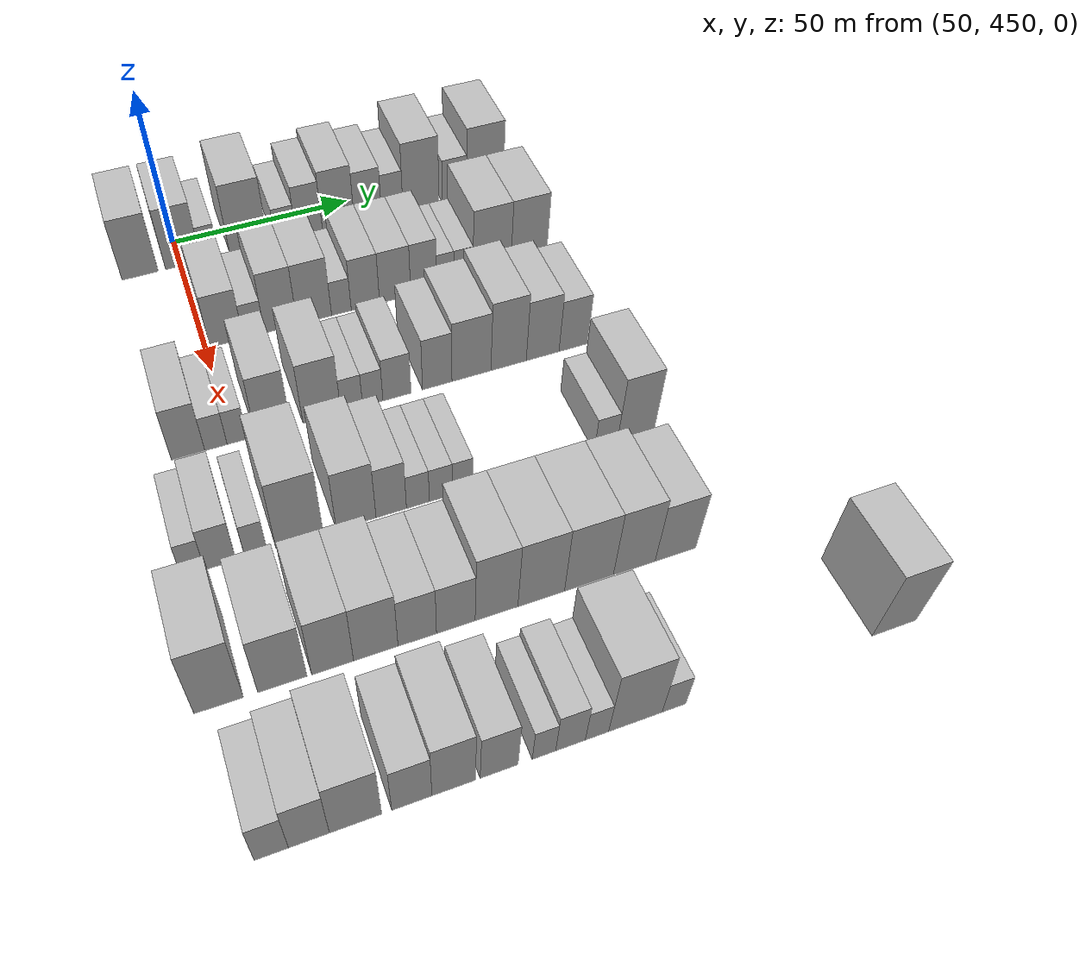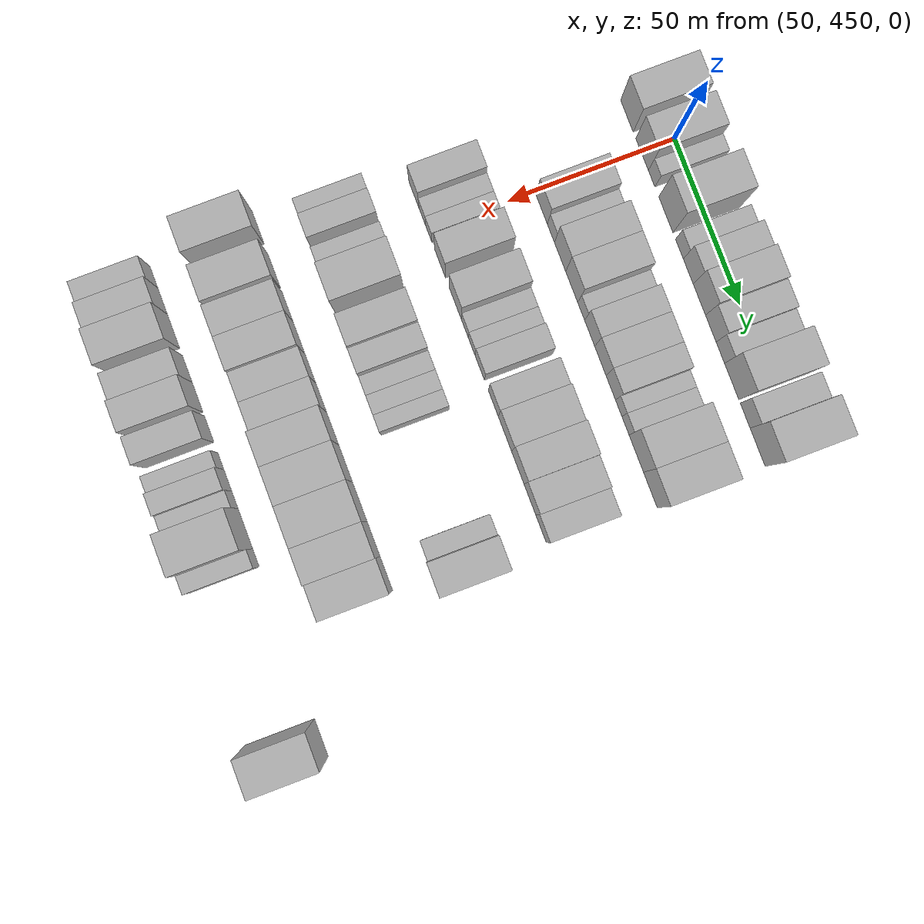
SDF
<sdf version="1.6">
 <world name="default">
  <model name="building_103">
   <static>1</static>
   <pose>50.0000 439.0548 0 0.000000 0.000000 0.000000</pose>
   <link name="link">
    <pose>0 0 10.50 0 0 0</pose>
    <collision name="collision"><geometry><box><size>20.0000 9.7772 21.0000</size></box></geometry></collision>
    <visual name="visual">
     <cast_shadows>0</cast_shadows>
     <geometry><box><size>20.0000 9.7772 21.0000</size></box></geometry>
     <material>
      <script>
       <uri>model://HANNAS_wall/materials/scripts</uri>
       <uri>model://HANNAS_wall/materials/textures</uri>
       <name>vrc/HANNAS_wall</name>
      </script>
     </material>
    </visual>
   </link>
  </model>
  <model name="building_104">
   <static>1</static>
   <pose>50.0000 450.8127 0 0.000000 0.000000 0.000000</pose>
   <link name="link">
    <pose>0 0 10.50 0 0 0</pose>
    <collision name="collision"><geometry><box><size>20.0000 9.7387 21.0000</size></box></geometry></collision>
    <visual name="visual">
     <cast_shadows>0</cast_shadows>
     <geometry><box><size>20.0000 9.7387 21.0000</size></box></geometry>
     <material>
      <script>
       <uri>model://HANNAS_wall/materials/scripts</uri>
       <uri>model://HANNAS_wall/materials/textures</uri>
       <name>vrc/HANNAS_wall</name>
      </script>
     </material>
    </visual>
   </link>
  </model>
  <model name="building_105">
   <static>1</static>
   <pose>50.0000 458.1939 0 0.000000 0.000000 0.000000</pose>
   <link name="link">
    <pose>0 0 6.00 0 0 0</pose>
    <collision name="collision"><geometry><box><size>20.0000 5.0235 12.0000</size></box></geometry></collision>
    <visual name="visual">
     <cast_shadows>0</cast_shadows>
     <geometry><box><size>20.0000 5.0235 12.0000</size></box></geometry>
     <material>
      <script>
       <uri>model://HANNAS_wall/materials/scripts</uri>
       <uri>model://HANNAS_wall/materials/textures</uri>
       <name>vrc/HANNAS_wall</name>
      </script>
     </material>
    </visual>
   </link>
  </model>
  <model name="building_106">
   <static>1</static>
   <pose>50.0000 469.1516 0 0.000000 0.000000 0.000000</pose>
   <link name="link">
    <pose>0 0 12.00 0 0 0</pose>
    <collision name="collision"><geometry><box><size>20.0000 10.8920 24.0000</size></box></geometry></collision>
    <visual name="visual">
     <cast_shadows>0</cast_shadows>
     <geometry><box><size>20.0000 10.8920 24.0000</size></box></geometry>
     <material>
      <script>
       <uri>model://HANNAS_wall/materials/scripts</uri>
       <uri>model://HANNAS_wall/materials/textures</uri>
       <name>vrc/HANNAS_wall</name>
      </script>
     </material>
    </visual>
   </link>
  </model>
  <model name="building_107">
   <static>1</static>
   <pose>50.0000 479.5795 0 0.000000 0.000000 0.000000</pose>
   <link name="link">
    <pose>0 0 6.00 0 0 0</pose>
    <collision name="collision"><geometry><box><size>20.0000 5.9638 12.0000</size></box></geometry></collision>
    <visual name="visual">
     <cast_shadows>0</cast_shadows>
     <geometry><box><size>20.0000 5.9638 12.0000</size></box></geometry>
     <material>
      <script>
       <uri>model://HANNAS_wall/materials/scripts</uri>
       <uri>model://HANNAS_wall/materials/textures</uri>
       <name>vrc/HANNAS_wall</name>
      </script>
     </material>
    </visual>
   </link>
  </model>
  <model name="building_108">
   <static>1</static>
   <pose>50.0000 486.3623 0 0.000000 0.000000 0.000000</pose>
   <link name="link">
    <pose>0 0 9.00 0 0 0</pose>
    <collision name="collision"><geometry><box><size>20.0000 7.6018 18.0000</size></box></geometry></collision>
    <visual name="visual">
     <cast_shadows>0</cast_shadows>
     <geometry><box><size>20.0000 7.6018 18.0000</size></box></geometry>
     <material>
      <script>
       <uri>model://HANNAS_wall/materials/scripts</uri>
       <uri>model://HANNAS_wall/materials/textures</uri>
       <name>vrc/HANNAS_wall</name>
      </script>
     </material>
    </visual>
   </link>
  </model>
  <model name="building_109">
   <static>1</static>
   <pose>50.0000 494.8280 0 0.000000 0.000000 0.000000</pose>
   <link name="link">
    <pose>0 0 10.50 0 0 0</pose>
    <collision name="collision"><geometry><box><size>20.0000 9.3296 21.0000</size></box></geometry></collision>
    <visual name="visual">
     <cast_shadows>0</cast_shadows>
     <geometry><box><size>20.0000 9.3296 21.0000</size></box></geometry>
     <material>
      <script>
       <uri>model://HANNAS_wall/materials/scripts</uri>
       <uri>model://HANNAS_wall/materials/textures</uri>
       <name>vrc/HANNAS_wall</name>
      </script>
     </material>
    </visual>
   </link>
  </model>
  <model name="building_110">
   <static>1</static>
   <pose>50.0000 503.5061 0 0.000000 0.000000 0.000000</pose>
   <link name="link">
    <pose>0 0 9.00 0 0 0</pose>
    <collision name="collision"><geometry><box><size>20.0000 8.0268 18.0000</size></box></geometry></collision>
    <visual name="visual">
     <cast_shadows>0</cast_shadows>
     <geometry><box><size>20.0000 8.0268 18.0000</size></box></geometry>
     <material>
      <script>
       <uri>model://HANNAS_wall/materials/scripts</uri>
       <uri>model://HANNAS_wall/materials/textures</uri>
       <name>vrc/HANNAS_wall</name>
      </script>
     </material>
    </visual>
   </link>
  </model>
  <model name="building_111">
   <static>1</static>
   <pose>50.0000 510.7034 0 0.000000 0.000000 0.000000</pose>
   <link name="link">
    <pose>0 0 7.50 0 0 0</pose>
    <collision name="collision"><geometry><box><size>20.0000 6.3677 15.0000</size></box></geometry></collision>
    <visual name="visual">
     <cast_shadows>0</cast_shadows>
     <geometry><box><size>20.0000 6.3677 15.0000</size></box></geometry>
     <material>
      <script>
       <uri>model://HANNAS_wall/materials/scripts</uri>
       <uri>model://HANNAS_wall/materials/textures</uri>
       <name>vrc/HANNAS_wall</name>
      </script>
     </material>
    </visual>
   </link>
  </model>
  <model name="building_112">
   <static>1</static>
   <pose>50.0000 519.2962 0 0.000000 0.000000 0.000000</pose>
   <link name="link">
    <pose>0 0 12.00 0 0 0</pose>
    <collision name="collision"><geometry><box><size>20.0000 10.8180 24.0000</size></box></geometry></collision>
    <visual name="visual">
     <cast_shadows>0</cast_shadows>
     <geometry><box><size>20.0000 10.8180 24.0000</size></box></geometry>
     <material>
      <script>
       <uri>model://HANNAS_wall/materials/scripts</uri>
       <uri>model://HANNAS_wall/materials/textures</uri>
       <name>vrc/HANNAS_wall</name>
      </script>
     </material>
    </visual>
   </link>
  </model>
  <model name="building_113">
   <static>1</static>
   <pose>50.0000 529.4061 0 0.000000 0.000000 0.000000</pose>
   <link name="link">
    <pose>0 0 7.50 0 0 0</pose>
    <collision name="collision"><geometry><box><size>20.0000 7.4017 15.0000</size></box></geometry></collision>
    <visual name="visual">
     <cast_shadows>0</cast_shadows>
     <geometry><box><size>20.0000 7.4017 15.0000</size></box></geometry>
     <material>
      <script>
       <uri>model://HANNAS_wall/materials/scripts</uri>
       <uri>model://HANNAS_wall/materials/textures</uri>
       <name>vrc/HANNAS_wall</name>
      </script>
     </material>
    </visual>
   </link>
  </model>
  <model name="building_114">
   <static>1</static>
   <pose>50.0000 538.7669 0 0.000000 0.000000 0.000000</pose>
   <link name="link">
    <pose>0 0 12.00 0 0 0</pose>
    <collision name="collision"><geometry><box><size>20.0000 11.3199 24.0000</size></box></geometry></collision>
    <visual name="visual">
     <cast_shadows>0</cast_shadows>
     <geometry><box><size>20.0000 11.3199 24.0000</size></box></geometry>
     <material>
      <script>
       <uri>model://HANNAS_wall/materials/scripts</uri>
       <uri>model://HANNAS_wall/materials/textures</uri>
       <name>vrc/HANNAS_wall</name>
      </script>
     </material>
    </visual>
   </link>
  </model>
  <model name="building_224">
   <static>1</static>
   <pose>82.0000 455.5686 0 0.000000 0.000000 0.000000</pose>
   <link name="link">
    <pose>0 0 9.00 0 0 0</pose>
    <collision name="collision"><geometry><box><size>20.0000 8.8140 18.0000</size></box></geometry></collision>
    <visual name="visual">
     <cast_shadows>0</cast_shadows>
     <geometry><box><size>20.0000 8.8140 18.0000</size></box></geometry>
     <material>
      <script>
       <uri>model://HANNAS_wall/materials/scripts</uri>
       <uri>model://HANNAS_wall/materials/textures</uri>
       <name>vrc/HANNAS_wall</name>
      </script>
     </material>
    </visual>
   </link>
  </model>
  <model name="building_225">
   <static>1</static>
   <pose>82.0000 462.7921 0 0.000000 0.000000 0.000000</pose>
   <link name="link">
    <pose>0 0 6.00 0 0 0</pose>
    <collision name="collision"><geometry><box><size>20.0000 5.6330 12.0000</size></box></geometry></collision>
    <visual name="visual">
     <cast_shadows>0</cast_shadows>
     <geometry><box><size>20.0000 5.6330 12.0000</size></box></geometry>
     <material>
      <script>
       <uri>model://HANNAS_wall/materials/scripts</uri>
       <uri>model://HANNAS_wall/materials/textures</uri>
       <name>vrc/HANNAS_wall</name>
      </script>
     </material>
    </visual>
   </link>
  </model>
  <model name="building_226">
   <static>1</static>
   <pose>82.0000 469.9623 0 0.000000 0.000000 0.000000</pose>
   <link name="link">
    <pose>0 0 10.50 0 0 0</pose>
    <collision name="collision"><geometry><box><size>20.0000 8.7074 21.0000</size></box></geometry></collision>
    <visual name="visual">
     <cast_shadows>0</cast_shadows>
     <geometry><box><size>20.0000 8.7074 21.0000</size></box></geometry>
     <material>
      <script>
       <uri>model://HANNAS_wall/materials/scripts</uri>
       <uri>model://HANNAS_wall/materials/textures</uri>
       <name>vrc/HANNAS_wall</name>
      </script>
     </material>
    </visual>
   </link>
  </model>
  <model name="building_227">
   <static>1</static>
   <pose>82.0000 478.9648 0 0.000000 0.000000 0.000000</pose>
   <link name="link">
    <pose>0 0 10.50 0 0 0</pose>
    <collision name="collision"><geometry><box><size>20.0000 9.2976 21.0000</size></box></geometry></collision>
    <visual name="visual">
     <cast_shadows>0</cast_shadows>
     <geometry><box><size>20.0000 9.2976 21.0000</size></box></geometry>
     <material>
      <script>
       <uri>model://HANNAS_wall/materials/scripts</uri>
       <uri>model://HANNAS_wall/materials/textures</uri>
       <name>vrc/HANNAS_wall</name>
      </script>
     </material>
    </visual>
   </link>
  </model>
  <model name="building_228">
   <static>1</static>
   <pose>82.0000 486.2976 0 0.000000 0.000000 0.000000</pose>
   <link name="link">
    <pose>0 0 6.00 0 0 0</pose>
    <collision name="collision"><geometry><box><size>20.0000 5.3678 12.0000</size></box></geometry></collision>
    <visual name="visual">
     <cast_shadows>0</cast_shadows>
     <geometry><box><size>20.0000 5.3678 12.0000</size></box></geometry>
     <material>
      <script>
       <uri>model://HANNAS_wall/materials/scripts</uri>
       <uri>model://HANNAS_wall/materials/textures</uri>
       <name>vrc/HANNAS_wall</name>
      </script>
     </material>
    </visual>
   </link>
  </model>
  <model name="building_229">
   <static>1</static>
   <pose>82.0000 492.8837 0 0.000000 0.000000 0.000000</pose>
   <link name="link">
    <pose>0 0 9.00 0 0 0</pose>
    <collision name="collision"><geometry><box><size>20.0000 7.8043 18.0000</size></box></geometry></collision>
    <visual name="visual">
     <cast_shadows>0</cast_shadows>
     <geometry><box><size>20.0000 7.8043 18.0000</size></box></geometry>
     <material>
      <script>
       <uri>model://HANNAS_wall/materials/scripts</uri>
       <uri>model://HANNAS_wall/materials/textures</uri>
       <name>vrc/HANNAS_wall</name>
      </script>
     </material>
    </visual>
   </link>
  </model>
  <model name="building_230">
   <static>1</static>
   <pose>82.0000 501.1316 0 0.000000 0.000000 0.000000</pose>
   <link name="link">
    <pose>0 0 9.00 0 0 0</pose>
    <collision name="collision"><geometry><box><size>20.0000 8.6916 18.0000</size></box></geometry></collision>
    <visual name="visual">
     <cast_shadows>0</cast_shadows>
     <geometry><box><size>20.0000 8.6916 18.0000</size></box></geometry>
     <material>
      <script>
       <uri>model://HANNAS_wall/materials/scripts</uri>
       <uri>model://HANNAS_wall/materials/textures</uri>
       <name>vrc/HANNAS_wall</name>
      </script>
     </material>
    </visual>
   </link>
  </model>
  <model name="building_231">
   <static>1</static>
   <pose>82.0000 509.1300 0 0.000000 0.000000 0.000000</pose>
   <link name="link">
    <pose>0 0 9.00 0 0 0</pose>
    <collision name="collision"><geometry><box><size>20.0000 7.3052 18.0000</size></box></geometry></collision>
    <visual name="visual">
     <cast_shadows>0</cast_shadows>
     <geometry><box><size>20.0000 7.3052 18.0000</size></box></geometry>
     <material>
      <script>
       <uri>model://HANNAS_wall/materials/scripts</uri>
       <uri>model://HANNAS_wall/materials/textures</uri>
       <name>vrc/HANNAS_wall</name>
      </script>
     </material>
    </visual>
   </link>
  </model>
  <model name="building_232">
   <static>1</static>
   <pose>82.0000 515.2304 0 0.000000 0.000000 0.000000</pose>
   <link name="link">
    <pose>0 0 6.00 0 0 0</pose>
    <collision name="collision"><geometry><box><size>20.0000 4.8956 12.0000</size></box></geometry></collision>
    <visual name="visual">
     <cast_shadows>0</cast_shadows>
     <geometry><box><size>20.0000 4.8956 12.0000</size></box></geometry>
     <material>
      <script>
       <uri>model://HANNAS_wall/materials/scripts</uri>
       <uri>model://HANNAS_wall/materials/textures</uri>
       <name>vrc/HANNAS_wall</name>
      </script>
     </material>
    </visual>
   </link>
  </model>
  <model name="building_233">
   <static>1</static>
   <pose>82.0000 520.4103 0 0.000000 0.000000 0.000000</pose>
   <link name="link">
    <pose>0 0 6.00 0 0 0</pose>
    <collision name="collision"><geometry><box><size>20.0000 5.4642 12.0000</size></box></geometry></collision>
    <visual name="visual">
     <cast_shadows>0</cast_shadows>
     <geometry><box><size>20.0000 5.4642 12.0000</size></box></geometry>
     <material>
      <script>
       <uri>model://HANNAS_wall/materials/scripts</uri>
       <uri>model://HANNAS_wall/materials/textures</uri>
       <name>vrc/HANNAS_wall</name>
      </script>
     </material>
    </visual>
   </link>
  </model>
  <model name="building_234">
   <static>1</static>
   <pose>82.0000 528.6153 0 0.000000 0.000000 0.000000</pose>
   <link name="link">
    <pose>0 0 12.00 0 0 0</pose>
    <collision name="collision"><geometry><box><size>20.0000 10.9459 24.0000</size></box></geometry></collision>
    <visual name="visual">
     <cast_shadows>0</cast_shadows>
     <geometry><box><size>20.0000 10.9459 24.0000</size></box></geometry>
     <material>
      <script>
       <uri>model://HANNAS_wall/materials/scripts</uri>
       <uri>model://HANNAS_wall/materials/textures</uri>
       <name>vrc/HANNAS_wall</name>
      </script>
     </material>
    </visual>
   </link>
  </model>
  <model name="building_235">
   <static>1</static>
   <pose>82.0000 539.3096 0 0.000000 0.000000 0.000000</pose>
   <link name="link">
    <pose>0 0 12.00 0 0 0</pose>
    <collision name="collision"><geometry><box><size>20.0000 10.4426 24.0000</size></box></geometry></collision>
    <visual name="visual">
     <cast_shadows>0</cast_shadows>
     <geometry><box><size>20.0000 10.4426 24.0000</size></box></geometry>
     <material>
      <script>
       <uri>model://HANNAS_wall/materials/scripts</uri>
       <uri>model://HANNAS_wall/materials/textures</uri>
       <name>vrc/HANNAS_wall</name>
      </script>
     </material>
    </visual>
   </link>
  </model>
  <model name="building_346">
   <static>1</static>
   <pose>114.0000 439.1416 0 0.000000 0.000000 0.000000</pose>
   <link name="link">
    <pose>0 0 9.00 0 0 0</pose>
    <collision name="collision"><geometry><box><size>20.0000 7.9990 18.0000</size></box></geometry></collision>
    <visual name="visual">
     <cast_shadows>0</cast_shadows>
     <geometry><box><size>20.0000 7.9990 18.0000</size></box></geometry>
     <material>
      <script>
       <uri>model://HANNAS_wall/materials/scripts</uri>
       <uri>model://HANNAS_wall/materials/textures</uri>
       <name>vrc/HANNAS_wall</name>
      </script>
     </material>
    </visual>
   </link>
  </model>
  <model name="building_347">
   <static>1</static>
   <pose>114.0000 445.8408 0 0.000000 0.000000 0.000000</pose>
   <link name="link">
    <pose>0 0 6.00 0 0 0</pose>
    <collision name="collision"><geometry><box><size>20.0000 5.3993 12.0000</size></box></geometry></collision>
    <visual name="visual">
     <cast_shadows>0</cast_shadows>
     <geometry><box><size>20.0000 5.3993 12.0000</size></box></geometry>
     <material>
      <script>
       <uri>model://HANNAS_wall/materials/scripts</uri>
       <uri>model://HANNAS_wall/materials/textures</uri>
       <name>vrc/HANNAS_wall</name>
      </script>
     </material>
    </visual>
   </link>
  </model>
  <model name="building_348">
   <static>1</static>
   <pose>114.0000 451.0106 0 0.000000 0.000000 0.000000</pose>
   <link name="link">
    <pose>0 0 6.00 0 0 0</pose>
    <collision name="collision"><geometry><box><size>20.0000 4.9402 12.0000</size></box></geometry></collision>
    <visual name="visual">
     <cast_shadows>0</cast_shadows>
     <geometry><box><size>20.0000 4.9402 12.0000</size></box></geometry>
     <material>
      <script>
       <uri>model://HANNAS_wall/materials/scripts</uri>
       <uri>model://HANNAS_wall/materials/textures</uri>
       <name>vrc/HANNAS_wall</name>
      </script>
     </material>
    </visual>
   </link>
  </model>
  <model name="building_349">
   <static>1</static>
   <pose>114.0000 459.8378 0 0.000000 0.000000 0.000000</pose>
   <link name="link">
    <pose>0 0 10.50 0 0 0</pose>
    <collision name="collision"><geometry><box><size>20.0000 8.7142 21.0000</size></box></geometry></collision>
    <visual name="visual">
     <cast_shadows>0</cast_shadows>
     <geometry><box><size>20.0000 8.7142 21.0000</size></box></geometry>
     <material>
      <script>
       <uri>model://HANNAS_wall/materials/scripts</uri>
       <uri>model://HANNAS_wall/materials/textures</uri>
       <name>vrc/HANNAS_wall</name>
      </script>
     </material>
    </visual>
   </link>
  </model>
  <model name="building_350">
   <static>1</static>
   <pose>114.0000 471.9777 0 0.000000 0.000000 0.000000</pose>
   <link name="link">
    <pose>0 0 10.50 0 0 0</pose>
    <collision name="collision"><geometry><box><size>20.0000 9.5657 21.0000</size></box></geometry></collision>
    <visual name="visual">
     <cast_shadows>0</cast_shadows>
     <geometry><box><size>20.0000 9.5657 21.0000</size></box></geometry>
     <material>
      <script>
       <uri>model://HANNAS_wall/materials/scripts</uri>
       <uri>model://HANNAS_wall/materials/textures</uri>
       <name>vrc/HANNAS_wall</name>
      </script>
     </material>
    </visual>
   </link>
  </model>
  <model name="building_351">
   <static>1</static>
   <pose>114.0000 479.5344 0 0.000000 0.000000 0.000000</pose>
   <link name="link">
    <pose>0 0 6.00 0 0 0</pose>
    <collision name="collision"><geometry><box><size>20.0000 5.5477 12.0000</size></box></geometry></collision>
    <visual name="visual">
     <cast_shadows>0</cast_shadows>
     <geometry><box><size>20.0000 5.5477 12.0000</size></box></geometry>
     <material>
      <script>
       <uri>model://HANNAS_wall/materials/scripts</uri>
       <uri>model://HANNAS_wall/materials/textures</uri>
       <name>vrc/HANNAS_wall</name>
      </script>
     </material>
    </visual>
   </link>
  </model>
  <model name="building_352">
   <static>1</static>
   <pose>114.0000 484.9096 0 0.000000 0.000000 0.000000</pose>
   <link name="link">
    <pose>0 0 6.00 0 0 0</pose>
    <collision name="collision"><geometry><box><size>20.0000 5.2028 12.0000</size></box></geometry></collision>
    <visual name="visual">
     <cast_shadows>0</cast_shadows>
     <geometry><box><size>20.0000 5.2028 12.0000</size></box></geometry>
     <material>
      <script>
       <uri>model://HANNAS_wall/materials/scripts</uri>
       <uri>model://HANNAS_wall/materials/textures</uri>
       <name>vrc/HANNAS_wall</name>
      </script>
     </material>
    </visual>
   </link>
  </model>
  <model name="building_353">
   <static>1</static>
   <pose>114.0000 491.1582 0 0.000000 0.000000 0.000000</pose>
   <link name="link">
    <pose>0 0 7.50 0 0 0</pose>
    <collision name="collision"><geometry><box><size>20.0000 7.2944 15.0000</size></box></geometry></collision>
    <visual name="visual">
     <cast_shadows>0</cast_shadows>
     <geometry><box><size>20.0000 7.2944 15.0000</size></box></geometry>
     <material>
      <script>
       <uri>model://HANNAS_wall/materials/scripts</uri>
       <uri>model://HANNAS_wall/materials/textures</uri>
       <name>vrc/HANNAS_wall</name>
      </script>
     </material>
    </visual>
   </link>
  </model>
  <model name="building_354">
   <static>1</static>
   <pose>114.0000 501.6869 0 0.000000 0.000000 0.000000</pose>
   <link name="link">
    <pose>0 0 9.00 0 0 0</pose>
    <collision name="collision"><geometry><box><size>20.0000 7.7631 18.0000</size></box></geometry></collision>
    <visual name="visual">
     <cast_shadows>0</cast_shadows>
     <geometry><box><size>20.0000 7.7631 18.0000</size></box></geometry>
     <material>
      <script>
       <uri>model://HANNAS_wall/materials/scripts</uri>
       <uri>model://HANNAS_wall/materials/textures</uri>
       <name>vrc/HANNAS_wall</name>
      </script>
     </material>
    </visual>
   </link>
  </model>
  <model name="building_355">
   <static>1</static>
   <pose>114.0000 510.7737 0 0.000000 0.000000 0.000000</pose>
   <link name="link">
    <pose>0 0 10.50 0 0 0</pose>
    <collision name="collision"><geometry><box><size>20.0000 10.4106 21.0000</size></box></geometry></collision>
    <visual name="visual">
     <cast_shadows>0</cast_shadows>
     <geometry><box><size>20.0000 10.4106 21.0000</size></box></geometry>
     <material>
      <script>
       <uri>model://HANNAS_wall/materials/scripts</uri>
       <uri>model://HANNAS_wall/materials/textures</uri>
       <name>vrc/HANNAS_wall</name>
      </script>
     </material>
    </visual>
   </link>
  </model>
  <model name="building_356">
   <static>1</static>
   <pose>114.0000 520.7861 0 0.000000 0.000000 0.000000</pose>
   <link name="link">
    <pose>0 0 12.00 0 0 0</pose>
    <collision name="collision"><geometry><box><size>20.0000 9.6142 24.0000</size></box></geometry></collision>
    <visual name="visual">
     <cast_shadows>0</cast_shadows>
     <geometry><box><size>20.0000 9.6142 24.0000</size></box></geometry>
     <material>
      <script>
       <uri>model://HANNAS_wall/materials/scripts</uri>
       <uri>model://HANNAS_wall/materials/textures</uri>
       <name>vrc/HANNAS_wall</name>
      </script>
     </material>
    </visual>
   </link>
  </model>
  <model name="building_357">
   <static>1</static>
   <pose>114.0000 530.0962 0 0.000000 0.000000 0.000000</pose>
   <link name="link">
    <pose>0 0 10.50 0 0 0</pose>
    <collision name="collision"><geometry><box><size>20.0000 9.0059 21.0000</size></box></geometry></collision>
    <visual name="visual">
     <cast_shadows>0</cast_shadows>
     <geometry><box><size>20.0000 9.0059 21.0000</size></box></geometry>
     <material>
      <script>
       <uri>model://HANNAS_wall/materials/scripts</uri>
       <uri>model://HANNAS_wall/materials/textures</uri>
       <name>vrc/HANNAS_wall</name>
      </script>
     </material>
    </visual>
   </link>
  </model>
  <model name="building_358">
   <static>1</static>
   <pose>114.0000 538.5714 0 0.000000 0.000000 0.000000</pose>
   <link name="link">
    <pose>0 0 9.00 0 0 0</pose>
    <collision name="collision"><geometry><box><size>20.0000 7.9446 18.0000</size></box></geometry></collision>
    <visual name="visual">
     <cast_shadows>0</cast_shadows>
     <geometry><box><size>20.0000 7.9446 18.0000</size></box></geometry>
     <material>
      <script>
       <uri>model://HANNAS_wall/materials/scripts</uri>
       <uri>model://HANNAS_wall/materials/textures</uri>
       <name>vrc/HANNAS_wall</name>
      </script>
     </material>
    </visual>
   </link>
  </model>
  <model name="building_466">
   <static>1</static>
   <pose>146.0000 433.7338 0 0.000000 0.000000 0.000000</pose>
   <link name="link">
    <pose>0 0 6.00 0 0 0</pose>
    <collision name="collision"><geometry><box><size>20.0000 5.1615 12.0000</size></box></geometry></collision>
    <visual name="visual">
     <cast_shadows>0</cast_shadows>
     <geometry><box><size>20.0000 5.1615 12.0000</size></box></geometry>
     <material>
      <script>
       <uri>model://HANNAS_wall/materials/scripts</uri>
       <uri>model://HANNAS_wall/materials/textures</uri>
       <name>vrc/HANNAS_wall</name>
      </script>
     </material>
    </visual>
   </link>
  </model>
  <model name="building_467">
   <static>1</static>
   <pose>146.0000 439.8168 0 0.000000 0.000000 0.000000</pose>
   <link name="link">
    <pose>0 0 7.50 0 0 0</pose>
    <collision name="collision"><geometry><box><size>20.0000 7.0044 15.0000</size></box></geometry></collision>
    <visual name="visual">
     <cast_shadows>0</cast_shadows>
     <geometry><box><size>20.0000 7.0044 15.0000</size></box></geometry>
     <material>
      <script>
       <uri>model://HANNAS_wall/materials/scripts</uri>
       <uri>model://HANNAS_wall/materials/textures</uri>
       <name>vrc/HANNAS_wall</name>
      </script>
     </material>
    </visual>
   </link>
  </model>
  <model name="building_468">
   <static>1</static>
   <pose>146.0000 447.8389 0 0.000000 0.000000 0.000000</pose>
   <link name="link">
    <pose>0 0 6.00 0 0 0</pose>
    <collision name="collision"><geometry><box><size>20.0000 5.0398 12.0000</size></box></geometry></collision>
    <visual name="visual">
     <cast_shadows>0</cast_shadows>
     <geometry><box><size>20.0000 5.0398 12.0000</size></box></geometry>
     <material>
      <script>
       <uri>model://HANNAS_wall/materials/scripts</uri>
       <uri>model://HANNAS_wall/materials/textures</uri>
       <name>vrc/HANNAS_wall</name>
      </script>
     </material>
    </visual>
   </link>
  </model>
  <model name="building_469">
   <static>1</static>
   <pose>146.0000 457.8391 0 0.000000 0.000000 0.000000</pose>
   <link name="link">
    <pose>0 0 12.00 0 0 0</pose>
    <collision name="collision"><geometry><box><size>20.0000 10.9607 24.0000</size></box></geometry></collision>
    <visual name="visual">
     <cast_shadows>0</cast_shadows>
     <geometry><box><size>20.0000 10.9607 24.0000</size></box></geometry>
     <material>
      <script>
       <uri>model://HANNAS_wall/materials/scripts</uri>
       <uri>model://HANNAS_wall/materials/textures</uri>
       <name>vrc/HANNAS_wall</name>
      </script>
     </material>
    </visual>
   </link>
  </model>
  <model name="building_470">
   <static>1</static>
   <pose>146.0000 471.0023 0 0.000000 0.000000 0.000000</pose>
   <link name="link">
    <pose>0 0 10.50 0 0 0</pose>
    <collision name="collision"><geometry><box><size>20.0000 9.3659 21.0000</size></box></geometry></collision>
    <visual name="visual">
     <cast_shadows>0</cast_shadows>
     <geometry><box><size>20.0000 9.3659 21.0000</size></box></geometry>
     <material>
      <script>
       <uri>model://HANNAS_wall/materials/scripts</uri>
       <uri>model://HANNAS_wall/materials/textures</uri>
       <name>vrc/HANNAS_wall</name>
      </script>
     </material>
    </visual>
   </link>
  </model>
  <model name="building_471">
   <static>1</static>
   <pose>146.0000 479.3212 0 0.000000 0.000000 0.000000</pose>
   <link name="link">
    <pose>0 0 9.00 0 0 0</pose>
    <collision name="collision"><geometry><box><size>20.0000 7.2719 18.0000</size></box></geometry></collision>
    <visual name="visual">
     <cast_shadows>0</cast_shadows>
     <geometry><box><size>20.0000 7.2719 18.0000</size></box></geometry>
     <material>
      <script>
       <uri>model://HANNAS_wall/materials/scripts</uri>
       <uri>model://HANNAS_wall/materials/textures</uri>
       <name>vrc/HANNAS_wall</name>
      </script>
     </material>
    </visual>
   </link>
  </model>
  <model name="building_472">
   <static>1</static>
   <pose>146.0000 485.7202 0 0.000000 0.000000 0.000000</pose>
   <link name="link">
    <pose>0 0 6.00 0 0 0</pose>
    <collision name="collision"><geometry><box><size>20.0000 5.5259 12.0000</size></box></geometry></collision>
    <visual name="visual">
     <cast_shadows>0</cast_shadows>
     <geometry><box><size>20.0000 5.5259 12.0000</size></box></geometry>
     <material>
      <script>
       <uri>model://HANNAS_wall/materials/scripts</uri>
       <uri>model://HANNAS_wall/materials/textures</uri>
       <name>vrc/HANNAS_wall</name>
      </script>
     </material>
    </visual>
   </link>
  </model>
  <model name="building_473">
   <static>1</static>
   <pose>146.0000 491.2937 0 0.000000 0.000000 0.000000</pose>
   <link name="link">
    <pose>0 0 6.00 0 0 0</pose>
    <collision name="collision"><geometry><box><size>20.0000 5.6211 12.0000</size></box></geometry></collision>
    <visual name="visual">
     <cast_shadows>0</cast_shadows>
     <geometry><box><size>20.0000 5.6211 12.0000</size></box></geometry>
     <material>
      <script>
       <uri>model://HANNAS_wall/materials/scripts</uri>
       <uri>model://HANNAS_wall/materials/textures</uri>
       <name>vrc/HANNAS_wall</name>
      </script>
     </material>
    </visual>
   </link>
  </model>
  <model name="building_474">
   <static>1</static>
   <pose>146.0000 496.5816 0 0.000000 0.000000 0.000000</pose>
   <link name="link">
    <pose>0 0 6.00 0 0 0</pose>
    <collision name="collision"><geometry><box><size>20.0000 4.9548 12.0000</size></box></geometry></collision>
    <visual name="visual">
     <cast_shadows>0</cast_shadows>
     <geometry><box><size>20.0000 4.9548 12.0000</size></box></geometry>
     <material>
      <script>
       <uri>model://HANNAS_wall/materials/scripts</uri>
       <uri>model://HANNAS_wall/materials/textures</uri>
       <name>vrc/HANNAS_wall</name>
      </script>
     </material>
    </visual>
   </link>
  </model>
  <model name="building_475">
   <static>1</static>
   <pose>146.0000 532.8542 0 0.000000 0.000000 0.000000</pose>
   <link name="link">
    <pose>0 0 6.00 0 0 0</pose>
    <collision name="collision"><geometry><box><size>20.0000 5.8635 12.0000</size></box></geometry></collision>
    <visual name="visual">
     <cast_shadows>0</cast_shadows>
     <geometry><box><size>20.0000 5.8635 12.0000</size></box></geometry>
     <material>
      <script>
       <uri>model://HANNAS_wall/materials/scripts</uri>
       <uri>model://HANNAS_wall/materials/textures</uri>
       <name>vrc/HANNAS_wall</name>
      </script>
     </material>
    </visual>
   </link>
  </model>
  <model name="building_476">
   <static>1</static>
   <pose>146.0000 540.6303 0 0.000000 0.000000 0.000000</pose>
   <link name="link">
    <pose>0 0 12.00 0 0 0</pose>
    <collision name="collision"><geometry><box><size>20.0000 9.6888 24.0000</size></box></geometry></collision>
    <visual name="visual">
     <cast_shadows>0</cast_shadows>
     <geometry><box><size>20.0000 9.6888 24.0000</size></box></geometry>
     <material>
      <script>
       <uri>model://HANNAS_wall/materials/scripts</uri>
       <uri>model://HANNAS_wall/materials/textures</uri>
       <name>vrc/HANNAS_wall</name>
      </script>
     </material>
    </visual>
   </link>
  </model>
  <model name="building_588">
   <static>1</static>
   <pose>178.0000 432.3826 0 0.000000 0.000000 0.000000</pose>
   <link name="link">
    <pose>0 0 12.00 0 0 0</pose>
    <collision name="collision"><geometry><box><size>20.0000 10.1271 24.0000</size></box></geometry></collision>
    <visual name="visual">
     <cast_shadows>0</cast_shadows>
     <geometry><box><size>20.0000 10.1271 24.0000</size></box></geometry>
     <material>
      <script>
       <uri>model://HANNAS_wall/materials/scripts</uri>
       <uri>model://HANNAS_wall/materials/textures</uri>
       <name>vrc/HANNAS_wall</name>
      </script>
     </material>
    </visual>
   </link>
  </model>
  <model name="building_589">
   <static>1</static>
   <pose>178.0000 445.6225 0 0.000000 0.000000 0.000000</pose>
   <link name="link">
    <pose>0 0 10.50 0 0 0</pose>
    <collision name="collision"><geometry><box><size>20.0000 10.3528 21.0000</size></box></geometry></collision>
    <visual name="visual">
     <cast_shadows>0</cast_shadows>
     <geometry><box><size>20.0000 10.3528 21.0000</size></box></geometry>
     <material>
      <script>
       <uri>model://HANNAS_wall/materials/scripts</uri>
       <uri>model://HANNAS_wall/materials/textures</uri>
       <name>vrc/HANNAS_wall</name>
      </script>
     </material>
    </visual>
   </link>
  </model>
  <model name="building_590">
   <static>1</static>
   <pose>178.0000 456.2854 0 0.000000 0.000000 0.000000</pose>
   <link name="link">
    <pose>0 0 10.50 0 0 0</pose>
    <collision name="collision"><geometry><box><size>20.0000 8.9730 21.0000</size></box></geometry></collision>
    <visual name="visual">
     <cast_shadows>0</cast_shadows>
     <geometry><box><size>20.0000 8.9730 21.0000</size></box></geometry>
     <material>
      <script>
       <uri>model://HANNAS_wall/materials/scripts</uri>
       <uri>model://HANNAS_wall/materials/textures</uri>
       <name>vrc/HANNAS_wall</name>
      </script>
     </material>
    </visual>
   </link>
  </model>
  <model name="building_591">
   <static>1</static>
   <pose>178.0000 465.6184 0 0.000000 0.000000 0.000000</pose>
   <link name="link">
    <pose>0 0 10.50 0 0 0</pose>
    <collision name="collision"><geometry><box><size>20.0000 9.6931 21.0000</size></box></geometry></collision>
    <visual name="visual">
     <cast_shadows>0</cast_shadows>
     <geometry><box><size>20.0000 9.6931 21.0000</size></box></geometry>
     <material>
      <script>
       <uri>model://HANNAS_wall/materials/scripts</uri>
       <uri>model://HANNAS_wall/materials/textures</uri>
       <name>vrc/HANNAS_wall</name>
      </script>
     </material>
    </visual>
   </link>
  </model>
  <model name="building_592">
   <static>1</static>
   <pose>178.0000 474.7180 0 0.000000 0.000000 0.000000</pose>
   <link name="link">
    <pose>0 0 9.00 0 0 0</pose>
    <collision name="collision"><geometry><box><size>20.0000 8.5061 18.0000</size></box></geometry></collision>
    <visual name="visual">
     <cast_shadows>0</cast_shadows>
     <geometry><box><size>20.0000 8.5061 18.0000</size></box></geometry>
     <material>
      <script>
       <uri>model://HANNAS_wall/materials/scripts</uri>
       <uri>model://HANNAS_wall/materials/textures</uri>
       <name>vrc/HANNAS_wall</name>
      </script>
     </material>
    </visual>
   </link>
  </model>
  <model name="building_593">
   <static>1</static>
   <pose>178.0000 483.3217 0 0.000000 0.000000 0.000000</pose>
   <link name="link">
    <pose>0 0 9.00 0 0 0</pose>
    <collision name="collision"><geometry><box><size>20.0000 8.7013 18.0000</size></box></geometry></collision>
    <visual name="visual">
     <cast_shadows>0</cast_shadows>
     <geometry><box><size>20.0000 8.7013 18.0000</size></box></geometry>
     <material>
      <script>
       <uri>model://HANNAS_wall/materials/scripts</uri>
       <uri>model://HANNAS_wall/materials/textures</uri>
       <name>vrc/HANNAS_wall</name>
      </script>
     </material>
    </visual>
   </link>
  </model>
  <model name="building_594">
   <static>1</static>
   <pose>178.0000 492.5645 0 0.000000 0.000000 0.000000</pose>
   <link name="link">
    <pose>0 0 12.00 0 0 0</pose>
    <collision name="collision"><geometry><box><size>20.0000 9.7843 24.0000</size></box></geometry></collision>
    <visual name="visual">
     <cast_shadows>0</cast_shadows>
     <geometry><box><size>20.0000 9.7843 24.0000</size></box></geometry>
     <material>
      <script>
       <uri>model://HANNAS_wall/materials/scripts</uri>
       <uri>model://HANNAS_wall/materials/textures</uri>
       <name>vrc/HANNAS_wall</name>
      </script>
     </material>
    </visual>
   </link>
  </model>
  <model name="building_595">
   <static>1</static>
   <pose>178.0000 502.8984 0 0.000000 0.000000 0.000000</pose>
   <link name="link">
    <pose>0 0 12.00 0 0 0</pose>
    <collision name="collision"><geometry><box><size>20.0000 10.8834 24.0000</size></box></geometry></collision>
    <visual name="visual">
     <cast_shadows>0</cast_shadows>
     <geometry><box><size>20.0000 10.8834 24.0000</size></box></geometry>
     <material>
      <script>
       <uri>model://HANNAS_wall/materials/scripts</uri>
       <uri>model://HANNAS_wall/materials/textures</uri>
       <name>vrc/HANNAS_wall</name>
      </script>
     </material>
    </visual>
   </link>
  </model>
  <model name="building_596">
   <static>1</static>
   <pose>178.0000 514.1524 0 0.000000 0.000000 0.000000</pose>
   <link name="link">
    <pose>0 0 12.00 0 0 0</pose>
    <collision name="collision"><geometry><box><size>20.0000 11.6247 24.0000</size></box></geometry></collision>
    <visual name="visual">
     <cast_shadows>0</cast_shadows>
     <geometry><box><size>20.0000 11.6247 24.0000</size></box></geometry>
     <material>
      <script>
       <uri>model://HANNAS_wall/materials/scripts</uri>
       <uri>model://HANNAS_wall/materials/textures</uri>
       <name>vrc/HANNAS_wall</name>
      </script>
     </material>
    </visual>
   </link>
  </model>
  <model name="building_597">
   <static>1</static>
   <pose>178.0000 525.0290 0 0.000000 0.000000 0.000000</pose>
   <link name="link">
    <pose>0 0 12.00 0 0 0</pose>
    <collision name="collision"><geometry><box><size>20.0000 10.1283 24.0000</size></box></geometry></collision>
    <visual name="visual">
     <cast_shadows>0</cast_shadows>
     <geometry><box><size>20.0000 10.1283 24.0000</size></box></geometry>
     <material>
      <script>
       <uri>model://HANNAS_wall/materials/scripts</uri>
       <uri>model://HANNAS_wall/materials/textures</uri>
       <name>vrc/HANNAS_wall</name>
      </script>
     </material>
    </visual>
   </link>
  </model>
  <model name="building_598">
   <static>1</static>
   <pose>178.0000 535.1098 0 0.000000 0.000000 0.000000</pose>
   <link name="link">
    <pose>0 0 10.50 0 0 0</pose>
    <collision name="collision"><geometry><box><size>20.0000 10.0333 21.0000</size></box></geometry></collision>
    <visual name="visual">
     <cast_shadows>0</cast_shadows>
     <geometry><box><size>20.0000 10.0333 21.0000</size></box></geometry>
     <material>
      <script>
       <uri>model://HANNAS_wall/materials/scripts</uri>
       <uri>model://HANNAS_wall/materials/textures</uri>
       <name>vrc/HANNAS_wall</name>
      </script>
     </material>
    </visual>
   </link>
  </model>
  <model name="building_703">
   <static>1</static>
   <pose>210.0000 435.2246 0 0.000000 0.000000 0.000000</pose>
   <link name="link">
    <pose>0 0 7.50 0 0 0</pose>
    <collision name="collision"><geometry><box><size>20.0000 6.5434 15.0000</size></box></geometry></collision>
    <visual name="visual">
     <cast_shadows>0</cast_shadows>
     <geometry><box><size>20.0000 6.5434 15.0000</size></box></geometry>
     <material>
      <script>
       <uri>model://HANNAS_wall/materials/scripts</uri>
       <uri>model://HANNAS_wall/materials/textures</uri>
       <name>vrc/HANNAS_wall</name>
      </script>
     </material>
    </visual>
   </link>
  </model>
  <model name="building_704">
   <static>1</static>
   <pose>210.0000 442.4594 0 0.000000 0.000000 0.000000</pose>
   <link name="link">
    <pose>0 0 9.00 0 0 0</pose>
    <collision name="collision"><geometry><box><size>20.0000 7.9262 18.0000</size></box></geometry></collision>
    <visual name="visual">
     <cast_shadows>0</cast_shadows>
     <geometry><box><size>20.0000 7.9262 18.0000</size></box></geometry>
     <material>
      <script>
       <uri>model://HANNAS_wall/materials/scripts</uri>
       <uri>model://HANNAS_wall/materials/textures</uri>
       <name>vrc/HANNAS_wall</name>
      </script>
     </material>
    </visual>
   </link>
  </model>
  <model name="building_705">
   <static>1</static>
   <pose>210.0000 451.5626 0 0.000000 0.000000 0.000000</pose>
   <link name="link">
    <pose>0 0 10.50 0 0 0</pose>
    <collision name="collision"><geometry><box><size>20.0000 10.2802 21.0000</size></box></geometry></collision>
    <visual name="visual">
     <cast_shadows>0</cast_shadows>
     <geometry><box><size>20.0000 10.2802 21.0000</size></box></geometry>
     <material>
      <script>
       <uri>model://HANNAS_wall/materials/scripts</uri>
       <uri>model://HANNAS_wall/materials/textures</uri>
       <name>vrc/HANNAS_wall</name>
      </script>
     </material>
    </visual>
   </link>
  </model>
  <model name="building_706">
   <static>1</static>
   <pose>210.0000 462.7419 0 0.000000 0.000000 0.000000</pose>
   <link name="link">
    <pose>0 0 9.00 0 0 0</pose>
    <collision name="collision"><geometry><box><size>20.0000 8.0784 18.0000</size></box></geometry></collision>
    <visual name="visual">
     <cast_shadows>0</cast_shadows>
     <geometry><box><size>20.0000 8.0784 18.0000</size></box></geometry>
     <material>
      <script>
       <uri>model://HANNAS_wall/materials/scripts</uri>
       <uri>model://HANNAS_wall/materials/textures</uri>
       <name>vrc/HANNAS_wall</name>
      </script>
     </material>
    </visual>
   </link>
  </model>
  <model name="building_707">
   <static>1</static>
   <pose>210.0000 471.2285 0 0.000000 0.000000 0.000000</pose>
   <link name="link">
    <pose>0 0 10.50 0 0 0</pose>
    <collision name="collision"><geometry><box><size>20.0000 8.8949 21.0000</size></box></geometry></collision>
    <visual name="visual">
     <cast_shadows>0</cast_shadows>
     <geometry><box><size>20.0000 8.8949 21.0000</size></box></geometry>
     <material>
      <script>
       <uri>model://HANNAS_wall/materials/scripts</uri>
       <uri>model://HANNAS_wall/materials/textures</uri>
       <name>vrc/HANNAS_wall</name>
      </script>
     </material>
    </visual>
   </link>
  </model>
  <model name="building_708">
   <static>1</static>
   <pose>210.0000 480.6317 0 0.000000 0.000000 0.000000</pose>
   <link name="link">
    <pose>0 0 9.00 0 0 0</pose>
    <collision name="collision"><geometry><box><size>20.0000 7.9115 18.0000</size></box></geometry></collision>
    <visual name="visual">
     <cast_shadows>0</cast_shadows>
     <geometry><box><size>20.0000 7.9115 18.0000</size></box></geometry>
     <material>
      <script>
       <uri>model://HANNAS_wall/materials/scripts</uri>
       <uri>model://HANNAS_wall/materials/textures</uri>
       <name>vrc/HANNAS_wall</name>
      </script>
     </material>
    </visual>
   </link>
  </model>
  <model name="building_709">
   <static>1</static>
   <pose>210.0000 490.0677 0 0.000000 0.000000 0.000000</pose>
   <link name="link">
    <pose>0 0 6.00 0 0 0</pose>
    <collision name="collision"><geometry><box><size>20.0000 4.9606 12.0000</size></box></geometry></collision>
    <visual name="visual">
     <cast_shadows>0</cast_shadows>
     <geometry><box><size>20.0000 4.9606 12.0000</size></box></geometry>
     <material>
      <script>
       <uri>model://HANNAS_wall/materials/scripts</uri>
       <uri>model://HANNAS_wall/materials/textures</uri>
       <name>vrc/HANNAS_wall</name>
      </script>
     </material>
    </visual>
   </link>
  </model>
  <model name="building_710">
   <static>1</static>
   <pose>210.0000 495.7351 0 0.000000 0.000000 0.000000</pose>
   <link name="link">
    <pose>0 0 7.50 0 0 0</pose>
    <collision name="collision"><geometry><box><size>20.0000 6.3741 15.0000</size></box></geometry></collision>
    <visual name="visual">
     <cast_shadows>0</cast_shadows>
     <geometry><box><size>20.0000 6.3741 15.0000</size></box></geometry>
     <material>
      <script>
       <uri>model://HANNAS_wall/materials/scripts</uri>
       <uri>model://HANNAS_wall/materials/textures</uri>
       <name>vrc/HANNAS_wall</name>
      </script>
     </material>
    </visual>
   </link>
  </model>
  <model name="building_711">
   <static>1</static>
   <pose>210.0000 501.4572 0 0.000000 0.000000 0.000000</pose>
   <link name="link">
    <pose>0 0 6.00 0 0 0</pose>
    <collision name="collision"><geometry><box><size>20.0000 5.0702 12.0000</size></box></geometry></collision>
    <visual name="visual">
     <cast_shadows>0</cast_shadows>
     <geometry><box><size>20.0000 5.0702 12.0000</size></box></geometry>
     <material>
      <script>
       <uri>model://HANNAS_wall/materials/scripts</uri>
       <uri>model://HANNAS_wall/materials/textures</uri>
       <name>vrc/HANNAS_wall</name>
      </script>
     </material>
    </visual>
   </link>
  </model>
  <model name="building_712">
   <static>1</static>
   <pose>210.0000 509.8989 0 0.000000 0.000000 0.000000</pose>
   <link name="link">
    <pose>0 0 12.00 0 0 0</pose>
    <collision name="collision"><geometry><box><size>20.0000 11.8132 24.0000</size></box></geometry></collision>
    <visual name="visual">
     <cast_shadows>0</cast_shadows>
     <geometry><box><size>20.0000 11.8132 24.0000</size></box></geometry>
     <material>
      <script>
       <uri>model://HANNAS_wall/materials/scripts</uri>
       <uri>model://HANNAS_wall/materials/textures</uri>
       <name>vrc/HANNAS_wall</name>
      </script>
     </material>
    </visual>
   </link>
  </model>
  <model name="building_713">
   <static>1</static>
   <pose>210.0000 518.4801 0 0.000000 0.000000 0.000000</pose>
   <link name="link">
    <pose>0 0 6.00 0 0 0</pose>
    <collision name="collision"><geometry><box><size>20.0000 5.3491 12.0000</size></box></geometry></collision>
    <visual name="visual">
     <cast_shadows>0</cast_shadows>
     <geometry><box><size>20.0000 5.3491 12.0000</size></box></geometry>
     <material>
      <script>
       <uri>model://HANNAS_wall/materials/scripts</uri>
       <uri>model://HANNAS_wall/materials/textures</uri>
       <name>vrc/HANNAS_wall</name>
      </script>
     </material>
    </visual>
   </link>
  </model>
  <model name="building_714">
   <static>1</static>
   <pose>210.0000 570.4247 0 0.000000 0.000000 0.000000</pose>
   <link name="link">
    <pose>0 0 12.00 0 0 0</pose>
    <collision name="collision"><geometry><box><size>20.0000 10.8467 24.0000</size></box></geometry></collision>
    <visual name="visual">
     <cast_shadows>0</cast_shadows>
     <geometry><box><size>20.0000 10.8467 24.0000</size></box></geometry>
     <material>
      <script>
       <uri>model://HANNAS_wall/materials/scripts</uri>
       <uri>model://HANNAS_wall/materials/textures</uri>
       <name>vrc/HANNAS_wall</name>
      </script>
     </material>
    </visual>
   </link>
  </model>
 </world>
</sdf>
